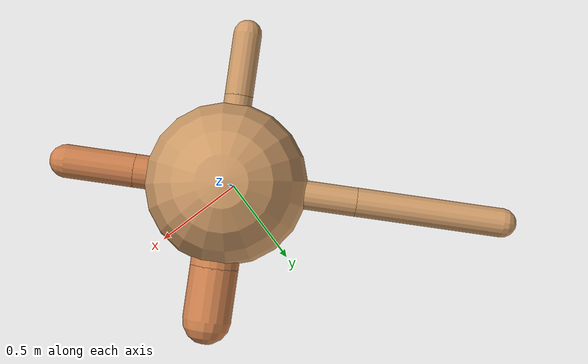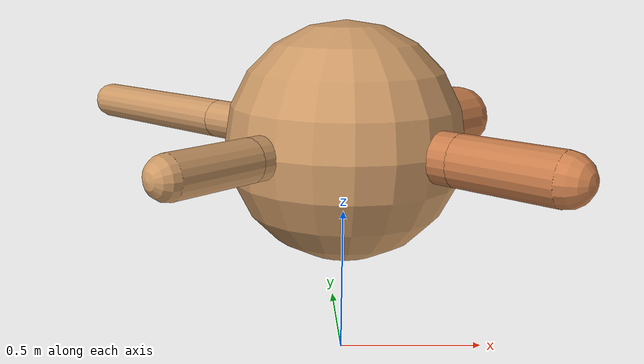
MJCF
<?xml version="1.0" ?>
<mujoco model="ant">

	<compiler angle="degree" coordinate="local" inertiafromgeom="true"/>

	<option integrator="RK4" timestep="0.01"/>

	<custom>

		<numeric data="0.0 0.0 0.55 1.0 0.0 0.0 0.0 0.0 1.0 0.0 -1.0 0.0 -1.0 0.0 1.0" name="init_qpos"/>

	</custom>

	<default>

		<joint armature="1" damping="1" limited="true"/>

		<geom conaffinity="0" condim="3" density="5.0" friction="1.5 0.1 0.1" margin="0.01" rgba="0.8 0.6 0.4 1"/>

	</default>

	<worldbody>

		<body name="torso" pos="0 0 0.75">

			<geom name="torso_geom" pos="0 0 0" size="0.4031838218232162" type="sphere"/>

			<!--joint armature="0" damping="0" limited="false" margin="0.01" name="root" pos="0 0 0" type="free"/-->

			<body name="front_left_leg" pos="0 0 0">

				<geom fromto="0 0 0 0.2 0.2 0" name="aux_1_geom" size="0.12044803867376637" type="capsule" rgba=".8 .5 .3 1"/>

				<body name="aux_1" pos="0.2 0.2 0">

					<joint axis="0 0 1" name="hip_1" pos="0.0 0.0 0.0" range="-40 40" type="hinge"/>

					<geom fromto="0 0 0 0.09299345918480231 0.09299345918480231 0" name="left_leg_geom" size="0.12044803867376637" type="capsule" rgba=".8 .5 .3 1"/>

					<body pos="0.09299345918480231 0.09299345918480231 0" name="front_left_foot">

						<joint axis="-1 1 0" name="ankle_1" pos="0.0 0.0 0.0" range="30 100" type="hinge"/>

						<geom fromto="0 0 0 0.18598691836960463 0.18598691836960463 0" name="left_ankle_geom" size="0.12044803867376637" type="capsule" rgba=".8 .5 .3 1"/>

					</body>

				</body>

			</body>

			<body name="front_right_leg" pos="0 0 0">

				<geom fromto="0 0 0 -0.2 0.2 0" name="aux_2_geom" size="0.07218850882926914" type="capsule"/>

				<body name="aux_2" pos="-0.2 0.2 0">

					<joint axis="0 0 1" name="hip_2" pos="0.0 0.0 0.0" range="-40 40" type="hinge"/>

					<geom fromto="0 0 0 -0.2560753345727812 0.2560753345727812 0" name="right_leg_geom" size="0.07218850882926914" type="capsule"/>

					<body pos="-0.2560753345727812 0.2560753345727812 0" name="front_right_foot">

						<joint axis="1 1 0" name="ankle_2" pos="0.0 0.0 0.0" range="-100 -30" type="hinge"/>

						<geom fromto="0 0 0 -0.5121506691455624 0.5121506691455624 0" name="right_ankle_geom" size="0.07218850882926914" type="capsule"/>

					</body>

				</body>

			</body>

			<body name="left_back_leg" pos="0 0 0">

				<geom fromto="0 0 0 -0.2 -0.2 0" name="aux_3_geom" size="0.07039970919555393" type="capsule"/>

				<body name="aux_3" pos="-0.2 -0.2 0">

					<joint axis="0 0 1" name="hip_3" pos="0.0 0.0 0.0" range="-40 40" type="hinge"/>

					<geom fromto="0 0 0 -0.10940010194643804 -0.10940010194643804 0" name="back_leg_geom" size="0.07039970919555393" type="capsule"/>

					<body pos="-0.10940010194643804 -0.10940010194643804 0" name="left_back_foot">

						<joint axis="-1 1 0" name="ankle_3" pos="0.0 0.0 0.0" range="-100 -30" type="hinge"/>

						<geom fromto="0 0 0 -0.21880020389287608 -0.21880020389287608 0" name="third_ankle_geom" size="0.07039970919555393" type="capsule"/>

					</body>

				</body>

			</body>

			<body name="right_back_leg" pos="0 0 0">

				<geom fromto="0 0 0 0.2 -0.2 0" name="aux_4_geom" size="0.08376454030131415" type="capsule" rgba=".8 .5 .3 1"/>

				<body name="aux_4" pos="0.2 -0.2 0">

					<joint axis="0 0 1" name="hip_4" pos="0.0 0.0 0.0" range="-40 40" type="hinge"/>

					<geom fromto="0 0 0 0.12051708635089041 -0.12051708635089041 0" name="rightback_leg_geom" size="0.08376454030131415" type="capsule" rgba=".8 .5 .3 1"/>

					<body pos="0.12051708635089041 -0.12051708635089041 0" name="right_back_foot">

						<joint axis="1 1 0" name="ankle_4" pos="0.0 0.0 0.0" range="30 100" type="hinge"/>

						<geom fromto="0 0 0 0.24103417270178082 -0.24103417270178082 0" name="fourth_ankle_geom" size="0.08376454030131415" type="capsule" rgba=".8 .5 .3 1"/>

					</body>

				</body>

			</body>

		</body>

	</worldbody>

	<actuator>

		<motor ctrllimited="true" ctrlrange="-1.0 1.0" joint="hip_4" gear="150"/>

		<motor ctrllimited="true" ctrlrange="-1.0 1.0" joint="ankle_4" gear="150"/>

		<motor ctrllimited="true" ctrlrange="-1.0 1.0" joint="hip_1" gear="150"/>

		<motor ctrllimited="true" ctrlrange="-1.0 1.0" joint="ankle_1" gear="150"/>

		<motor ctrllimited="true" ctrlrange="-1.0 1.0" joint="hip_2" gear="150"/>

		<motor ctrllimited="true" ctrlrange="-1.0 1.0" joint="ankle_2" gear="150"/>

		<motor ctrllimited="true" ctrlrange="-1.0 1.0" joint="hip_3" gear="150"/>

		<motor ctrllimited="true" ctrlrange="-1.0 1.0" joint="ankle_3" gear="150"/>

	</actuator>

</mujoco>
